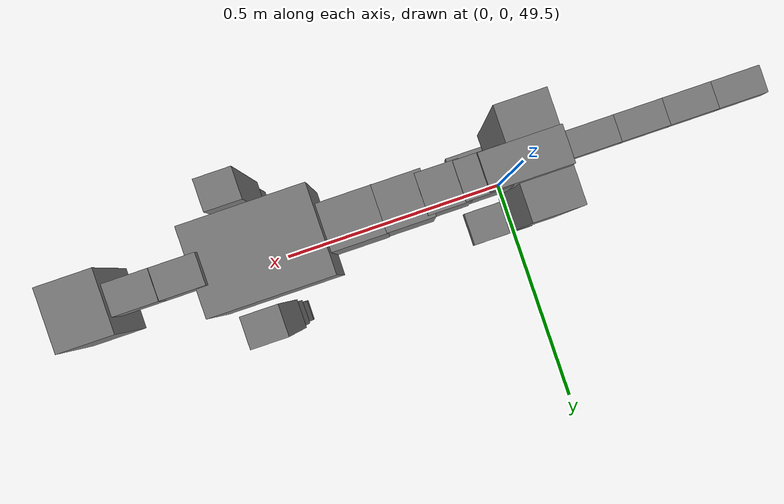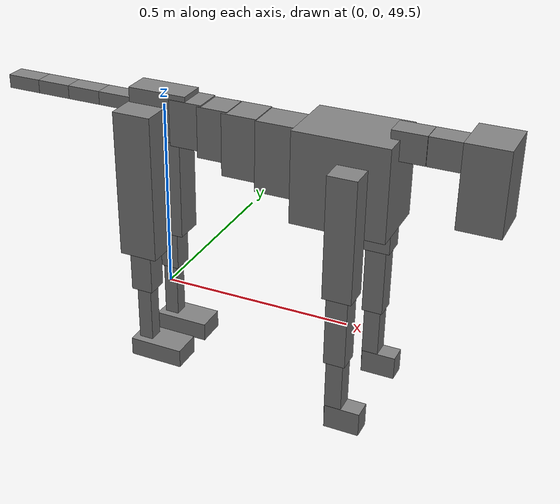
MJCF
<mujoco model="dog">

    <default>
        <joint armature="0.02" stiffness="1" damping="0.2" limited="true"/>
        <geom condim="3" friction="1 0.05 0.05" margin="0.01"/>
        <motor ctrllimited="true" ctrlrange="-1.0 1.0" forcelimited="true" gear="50"/>
    </default>

    <compiler inertiafromgeom="true" angle="radian"/>

    <option timestep="0.016" iterations="50" tolerance="1e-10" solver="Newton" jacobian="dense" cone="pyramidal"/>

    <size nconmax="20000" njmax="60000" nstack="5000000"/>
    <visual>
        <map force="0.1" zfar="30"/>
        <rgba haze="0.15 0.25 0.35 1"/>
        <quality shadowsize="2048"/>
        <global offwidth="800" offheight="800"/>
    </visual>

    <asset>
        <texture type="skybox" builtin="gradient" rgb1="0.3 0.5 0.7" rgb2="0 0 0" width="512" height="512"/>
        <texture name="texplane" type="2d" builtin="checker" rgb1=".2 .3 .4" rgb2=".1 0.15 0.2" width="512" height="512"
                 mark="cross" markrgb=".8 .8 .8"/>
        <texture name="texgeom" type="cube" builtin="flat" mark="cross" width="127" height="1278" rgb1="0.8 0.6 0.4"
                 rgb2="0.8 0.6 0.4" markrgb="1 1 1" random="0.01"/>

        <material name="matplane" reflectance="0.3" texture="texplane" texrepeat="1 1" texuniform="true"/>
        <material name="matgeom" texture="texgeom" texuniform="true" rgba="0.8 0.6 .4 1"/>
    </asset>

    <worldbody>
        <geom name="floor" pos="0 0 0" size="0 0 .25" type="plane" material="matplane" condim="3"/>

        <light directional="false" diffuse=".2 .2 .2" specular="0 0 0" pos="0 0 5" dir="0 0 -1" castshadow="false"/>
        <light mode="targetbodycom" target="torso" directional="false" diffuse=".8 .8 .8" specular="0.3 0.3 0.3"
               pos="0 0 4.0" dir="0 0 -1"/>

        <body name="root" pos="0 0 50">
            <freejoint name="root_1"/>
            <geom type="box" pos="0 0 -0.02" size="0.0774  0.0358  0.063" density="2030"/>

            <body name="spine1" pos="0.054 0 0">
                <joint name="spine1_y" axis="0 1 0" range="0 0.7" limited="true"/>
                <geom type="box" pos="0.02375 0 -0.03" size="0.04375  0.0375  0.05985" density="2030"/>

                <body name="spine2" pos="0.0612 0 0">
                    <joint name="spine2_y" axis="0 1 0" range="-0.15 0.15" limited="true"/>
                    <geom type="box" pos="0.03555  0  -0.04" size="0.04055  0.039  0.06615" density="2030"/>

                    <body name="spine3" pos="0.0730 0 0">
                        <joint name="spine3_y" axis="0 1 0" range="-0.15 0.15" limited="true"/>
                        <geom type="box" pos="0.03555  0  -0.057" size="0.04555  0.0445  0.081" density="2030"/>

                        <body name="spine4" pos="0.0780 0 0">
                            <joint name="spine4_y" axis="0 1 0" range="-0.15 0.15" limited="true"/>
                            <geom type="box" pos="0.05265  0  -0.07" size="0.05265  0.045  0.09135" density="2030"/>

                            <body name="torso" pos="0.1082 0 0">
                                <joint name="torso_y" axis="0 1 0" range="-0.15 0.15" limited="true"/>
                                <geom type="box" pos="0.11925  0  -0.085" size="0.11925  0.085  0.11745"
                                      density="2030"/>

                                <body name="neck1" pos="0.2160  0   0.0180">
                                    <joint name="neck1_y" axis="0 1 0" range="-1.2  -1" limited="true"/>
                                    <geom type="box" pos="0.0423  0  0" size="0.0423  0.03  0.036" density="2325"/>

                                    <body name="neck2" pos="0.0853  0  0">
                                        <joint name="neck2_y" axis="0 1 0" range="0.1  0" limited="true"/>
                                        <geom type="box" pos="0.0423  0  0" size="0.0423  0.03  0.036" density="2325"/>

                                        <body name="head" pos="0.0853  0  0">
                                            <joint name="head_y" axis="0 1 0" range="-0.3  -0.2" limited="true"/>
                                            <geom type="box" pos="0.0531  0  -0.055" size="0.0531  0.06  0.1044"
                                                  density="4030"/>

                                        </body>
                                    </body>
                                </body>

                                <body name="front_shoulder" pos="0.156  0   -0.0480">
                                    <joint name="front_shoulder_y" axis="0 1 0" range="-1 1.5" limited="true"/>
                                    <geom type="box" pos="0 0.13 -0.1303" size="0.0365  0.0312  0.1569" density="1158"/>
                                    <geom type="box" pos="0 -0.13 -0.1303" size="0.0365  0.0312  0.1569"
                                          density="1158"/>

                                    <body name="front_elbow" pos="0  0  -0.2605">
                                        <joint name="front_elbow_y" axis="0 1 0" range="-2 0" limited="true"/>
                                        <geom type="box" pos="0 0.13 -0.1028" size="0.0271  0.0277  0.1028"
                                              density="1081"/>
                                        <geom type="box" pos="0 -0.13 -0.1028" size="0.0271  0.0277  0.1028"
                                              density="1081"/>

                                        <body name="front_wrist" pos="0  0  -0.2057">
                                            <joint name="front_wrist_y" axis="0 1 0" range="-0.2 0" limited="true"/>
                                            <geom type="box" pos="0 0.13 -0.0708" size="0.0215  0.0239  0.0840"
                                                  density="1664"/>
                                            <geom type="box" pos="0 -0.13 -0.0708" size="0.0215  0.0239  0.0840"
                                                  density="1664"/>

                                            <body name="front_finger_end" pos="0  0  -0.1416">
                                                <joint name="front_finger_y" axis="0 1 0" range="-0.4 1"
                                                       limited="true"/>
                                                <geom type="box" pos="0.0246  0.13  -0.0164"
                                                      size="0.0451  0.0246  0.0314" density="1515"/>
                                                <geom type="box" pos="0.0246  -0.13  -0.0164"
                                                      size="0.0451  0.0246  0.0314" density="1515"/>

                                            </body>

                                        </body>
                                    </body>
                                </body>

                            </body>
                        </body>
                    </body>
                </body>
            </body>

            <body name="back_hip" pos="-0.03 0 -0.018">
                <joint name="back_hip_y" axis="0 1 0" range="-1.5 0.3" limited="true"/>
                <geom type="box" pos="0 0.07 -0.1710" size="0.0504  0.0395  0.1938" density="1154"/>
                <geom type="box" pos="0 -0.07 -0.1710" size="0.0504  0.0395  0.1938" density="1154"/>

                <body name="back_knee" pos="0  0  -0.3420">
                    <joint name="back_knee_y" axis="0 1 0" range="0 2.8" limited="true"/>
                    <geom type="box" pos="0 0.07 -0.0568" size="0.0292  0.0288  0.0723" density="1227"/>
                    <geom type="box" pos="0 -0.07 -0.0568" size="0.0292  0.0288  0.0723" density="1227"/>

                    <body name="back_ankle" pos="0  0  -0.1136">
                        <joint name="back_ankle_y" axis="0 1 0" range="-2.2 0" limited="true"/>
                        <geom type="box" pos="0 0.07 -0.0908" size="0.0191  0.0191  0.1021" density="1284"/>
                        <geom type="box" pos="0 -0.07 -0.0908" size="0.0191  0.0191  0.1021" density="1284"/>

                        <body name="back_toe_end" pos="0  0  -0.1817">
                            <joint name="back_toe_y" axis="0 1 0" range="-0.4 1" limited="true"/>
                            <geom type="box" pos="0.0395  0.07  -0.0096" size="0.0725  0.0395  0.0246" density="1515"/>
                            <geom type="box" pos="0.0395  -0.07  -0.0096" size="0.0725  0.0395  0.0246" density="1515"/>

                        </body>
                    </body>
                </body>
            </body>

            <body name="tail1" pos="-0.074 0 -0.006">
                <joint name="tail1_y" axis="0 1 0" range="-0.2 0.2" limited="true"/>
                <geom type="box" pos="-0.0536  0  0" size="0.045  0.025  0.0175" density="1587"/>

                <body name="tail2" pos="-0.09 0 0">
                    <joint name="tail2_y" axis="0 1 0" range="-0.2 0.2" limited="true"/>
                    <geom type="box" pos="-0.0536  0  0" size="0.045  0.025  0.0175" density="1587"/>

                    <body name="tail3" pos="-0.09 0 0">
                        <joint name="tail3_y" axis="0 1 0" range="-0.2 0.2" limited="true"/>
                        <geom type="box" pos="-0.0536  0  0" size="0.045  0.025  0.0175" density="1587"/>

                        <body name="tail4" pos="-0.09 0 0">
                            <joint name="tail4_y" axis="0 1 0" range="-0.2 0.2" limited="true"/>
                            <geom type="box" pos="-0.0536  0  0" size="0.045  0.025  0.0175" density="1587"/>

                        </body>
                    </body>
                </body>
            </body>
        </body>
    </worldbody>

    <actuator>
        <motor joint="spine1_y" forcerange="-150 150     "/>
        <motor joint="spine2_y" forcerange="-150 150     "/>
        <motor joint="spine3_y" forcerange="-150 150     "/>
        <motor joint="spine4_y" forcerange="-150 150     "/>
        <motor joint="torso_y" forcerange="-150 150     "/>
        <motor joint="neck1_y" forcerange="-100 100       "/>
        <motor joint="neck2_y" forcerange="-100 100       "/>
        <motor joint="head_y" forcerange="-150 150       "/>
        <motor joint="front_shoulder_y" forcerange="-181.20 126.68"/>
        <motor joint="front_elbow_y" forcerange="-137.17 164.23"/>
        <motor joint="front_wrist_y" forcerange="-115.78 75.20"/>
        <motor joint="front_finger_y" forcerange="-30.17 61.15"/>
        <motor joint="back_hip_y" forcerange="-371.61 355.01"/>
        <motor joint="back_knee_y" forcerange="-283.99 334.49"/>
        <motor joint="back_angle_y" forcerange="-66.79 138.79"/>
        <motor joint="back_toe_y" forcerange="-116.66 119.49"/>
        <motor joint="tail1_y" forcerange="-50 50     "/>
        <motor joint="tail2_y" forcerange="-50 50     "/>
        <motor joint="tail3_y" forcerange="-50 50     "/>
        <motor joint="tail4_y" forcerange="-50 50     "/>
    </actuator>
</mujoco>
